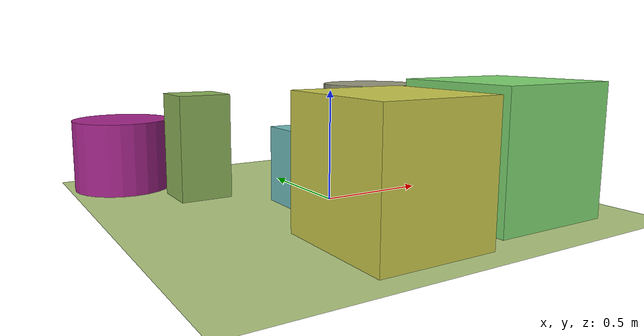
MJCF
<mujoco>
   <asset>
<texture type="skybox" builtin="gradient" rgb1="0.1 0.5 0.3" rgb2="0.5 0.1 0.2" width="256" height="256"/>
<texture name="checker_0" builtin="checker" type="2d" rgb1="0.9 0.8 0.6" rgb2="0.1 0.9 0.3" width="200" height="200"/>
<texture name="gradient_1" builtin="gradient" rgb1="0.4 0.6 0.5" rgb2="0.7 0.8 0.2" width="200" height="200"/>
<texture name="checker_2" builtin="checker" type="2d" rgb1="0.4 0.3 0.3" rgb2="0.8 0.9 0.7" width="200" height="200"/>
<texture name="gradient_3" builtin="gradient" rgb1="0.4 0.8 0.7" rgb2="0.5 0.7 0.8" width="200" height="200"/>
<texture name="flat_4" builtin="flat" rgb1="0.8 0.8 0.3" rgb2="0.8 0.8 0.3"  width="200" height="200"/>
<texture name="checker_5" builtin="checker" type="2d" rgb1="0.6 0.2 0.8" rgb2="0.7 0.1 0.3" width="200" height="200"/><material name="checker_0_mat" reflectance="0" texrepeat="7 7" texture="checker_0" texuniform="false" />
<material name="gradient_1_mat" reflectance="0" texture="gradient_1" texuniform="true"/>
<material name="checker_2_mat" reflectance="0" texrepeat="5 5" texture="checker_2" texuniform="false" />
<material name="gradient_3_mat" reflectance="0" texture="gradient_3" texuniform="true"/>
<material name="flat_4_mat" reflectance="0" texture="flat_4" texuniform="true"/>
<material name="checker_5_mat" reflectance="0" texrepeat="7 7" texture="checker_5" texuniform="false" />
   </asset>

   <worldbody>
      <light diffuse=".9 .9 .9" pos="0 0 3" dir="0 0 -1"/>
     <geom type="plane" size="1 1 0.1" rgba="0.7 0.8 0.5 1"/>
<geom type="box" pos="0.49 -0.55 0.28" size="0.28 0.28 0.28" material="checker_0_mat" />
<geom type="box" pos="-0.49 0.38 0.24" size="0.12 0.11 0.24" material="gradient_1_mat" />
<geom type="cylinder" pos="0.66 0.58 0.24" size="0.27 0.24 0.24" material="checker_2_mat" />
<geom type="box" pos="-0.07 -0.05 0.17" size="0.17 0.17 0.17" material="gradient_3_mat" />
<geom type="box" pos="-0.16 -0.63 0.27" size="0.25 0.27 0.27" material="flat_4_mat" />
<geom type="cylinder" pos="-0.75 0.74 0.17" size="0.23 0.17 0.17" material="checker_5_mat" /><camera euler="60 0 180" fovy="60" name="camera_a" pos="0 -1.5 1"></camera>   </worldbody>
</mujoco>
